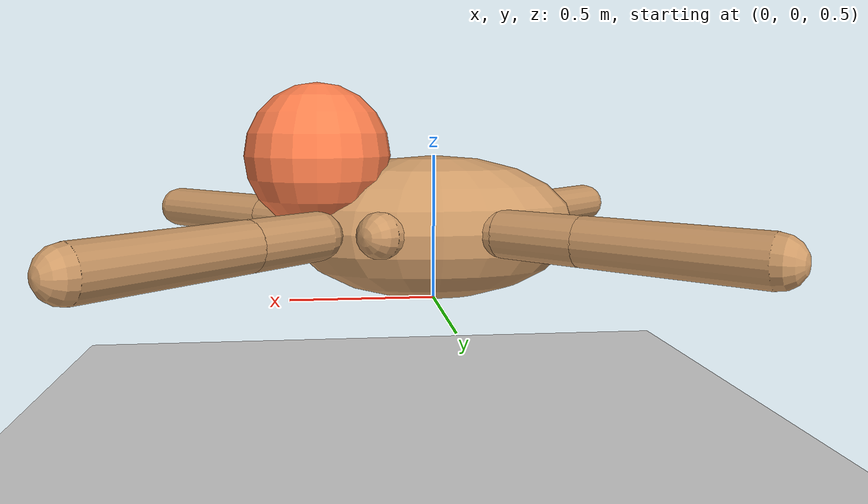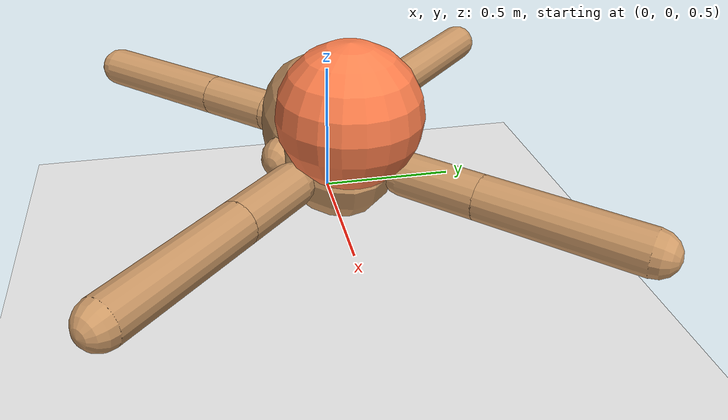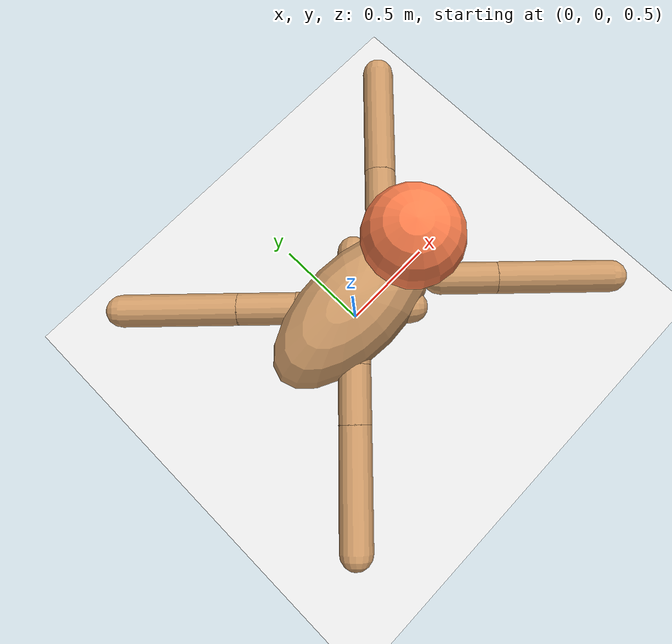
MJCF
<mujoco model="ant">
  <compiler angle="degree" coordinate="local" inertiafromgeom="true" settotalmass="40"/>
  <option integrator="RK4" timestep="0.005"/>
  <custom>
    <numeric data="0.0 0.0 0.55 1.0 0.0 0.0 0.0 0.0 1.0 0.0 -1.0 0.0 -1.0 0.0 1.0" name="init_qpos"/>
  </custom>
  <default>
    <joint armature="1" damping="1" limited="true"/>
    <geom conaffinity="1" contype="1" condim="3" density="5.0" friction="1 0.5 0.5" margin="0.01" rgba="0.8 0.6 0.4 1" material="geom"/>
  </default>
  <visual>
    <quality shadowsize="8000" numslices="36" numquads="16"/>
    <map znear="0.02" shadowclip="3"/>
  </visual>
  <asset>
      <texture type="skybox" builtin="gradient" rgb1="1 1 1" rgb2="1 1 1" width="200" height="200"/>
      <texture builtin="checker" height="200" name="texplane" rgb1=".35 .65 .65" rgb2=".0 .4 0.6" type="2d" width="200"/>
      <material name="MatPlane" reflectance="1" shininess="0.5" specular="0.5" texrepeat="50 50" texture="texplane"/>
      <texture builtin="flat" height="1278" mark="cross" markrgb="1 1 1" name="texgeom" random="0.01" rgb1="0.8 0.6 0.4" rgb2="0.8 0.6 0.4" type="cube" width="127"/>
      <material name="geom" texture="texgeom" texuniform="true"/>
  </asset>
  <worldbody>
    <light directional="true" cutoff="100" exponent="1" diffuse="1 1 1" specular=".1 .1 .1" pos="0 0 1.3" dir="-0 0 -1.3" />
    <geom name='floor' material="MatPlane" pos='0 0 0' size='40 40 40' type='plane' rgba='0.9 0.9 0.9 1' condim='3' group="1"/>
    <body name="torso" pos="0 0 0.75">
      <camera name="track" mode="trackcom" pos="0 -12 8" xyaxes="1 0 0 0 0.6 0.8"/>
      <geom name="torso_geom" pos="0 0 0" size="0.50 0.25 0.25" type="ellipsoid"/>
      <body name="head" pos="0.4 0 0.25">
        <geom name="head_geom" density="0.01" rgba="1.0 0.5 0.3 1" pos="0.0 0.0 0.0" size="0.25" type="sphere"/>
        <site name="head_site" pos="0.0 0.0 0.0" size="0.005" type="sphere"/>
      </body>
      <joint armature="0" damping="0" limited="false" margin="0.01" name="root" pos="0 0 0" type="free"/>
      <body name="front_left_leg" pos="0 0 0">
        <geom fromto="0.0 0.0 0.0 0.2 0.2 0.0" name="aux_1_geom" size="0.08" type="capsule"/>
        <body name="aux_1" pos="0.4 0.2 0">
          <joint axis="0 0 1" name="hip_1" pos="0.0 0.0 0.0" range="-30 30" type="hinge"/>
          <geom fromto="0.0 0.0 0.0 0.2 0.2 0.0" name="front_left_leg_geom" size="0.08" type="capsule"/>
          <site fromto="0.0 0.0 0.0 0.2 0.2 0.0" name="front_left_leg_site" size="0.005" type="capsule"/>
          <body pos="0.2 0.2 0">
            <joint axis="-1 1 0" name="ankle_1" pos="0.0 0.0 0.0" range="30 70" type="hinge"/>
            <geom fromto="0.0 0.0 0.0 0.4 0.4 0.0" name="front_left_ankle_geom" size="0.08" type="capsule"/>
            <site fromto="0.0 0.0 0.0 0.4 0.4 0.0" name="front_left_ankle_site" size="0.005" type="capsule"/>
          </body>
        </body>
      </body>
      <body name="front_right_leg" pos="0 0 0">
        <geom fromto="0.0 0.0 0.0 -0.2 0.2 0.0" name="aux_2_geom" size="0.08" type="capsule"/>
        <body name="aux_2" pos="-0.2 0.2 0">
          <joint axis="0 0 1" name="hip_2" pos="0.0 0.0 0.0" range="-30 30" type="hinge"/>
          <geom fromto="0.0 0.0 0.0 -0.2 0.2 0.0" name="front_right_leg_geom" size="0.08" type="capsule"/>
          <body pos="-0.2 0.2 0">
            <joint axis="1 1 0" name="ankle_2" pos="0.0 0.0 0.0" range="-70 -30" type="hinge"/>
            <geom fromto="0.0 0.0 0.0 -0.4 0.4 0.0" name="front_right_ankle_geom" size="0.08" type="capsule"/>
          </body>
        </body>
      </body>
      <body name="back_leg" pos="0 0 0">
        <geom fromto="0.0 0.0 0.0 -0.2 -0.2 0.0" name="aux_3_geom" size="0.08" type="capsule"/>
        <body name="aux_3" pos="-0.2 -0.2 0">
          <joint axis="0 0 1" name="hip_3" pos="0.0 0.0 0.0" range="-30 30" type="hinge"/>
          <geom fromto="0.0 0.0 0.0 -0.2 -0.2 0.0" name="left_back_leg_geom" size="0.08" type="capsule"/>
          <body pos="-0.2 -0.2 0">
            <joint axis="-1 1 0" name="ankle_3" pos="0.0 0.0 0.0" range="-70 -30" type="hinge"/>
            <geom fromto="0.0 0.0 0.0 -0.4 -0.4 0.0" name="left_back_ankle_geom" size="0.08" type="capsule"/>
          </body>
        </body>
      </body>
      <body name="right_back_leg" pos="0 0 0">
        <geom fromto="0.0 0.0 0.0 0.2 -0.2 0.0" name="aux_4_geom" size="0.08" type="capsule"/>
        <body name="aux_4" pos="0.4 -0.2 0">
          <joint axis="0 0 1" name="hip_4" pos="0.0 0.0 0.0" range="-30 30" type="hinge"/>
          <geom fromto="0.0 0.0 0.0 0.2 -0.2 0.0" name="right_back_leg_geom" size="0.08" type="capsule"/>
          <body pos="0.2 -0.2 0">
            <joint axis="1 1 0" name="ankle_4" pos="0.0 0.0 0.0" range="30 70" type="hinge"/>
            <geom fromto="0.0 0.0 0.0 0.4 -0.4 0.0" name="right_back_ankle_geom" size="0.08" type="capsule"/>
          </body>
        </body>
      </body>
    </body>

  </worldbody>
  <actuator>
    <motor ctrllimited="true" ctrlrange="-1.0 1.0" joint="hip_4" gear="150"/>
    <motor ctrllimited="true" ctrlrange="-1.0 1.0" joint="ankle_4" gear="150"/>
    <motor ctrllimited="true" ctrlrange="-1.0 1.0" joint="hip_1" gear="150"/>
    <motor ctrllimited="true" ctrlrange="-1.0 1.0" joint="ankle_1" gear="150"/>
    <motor ctrllimited="true" ctrlrange="-1.0 1.0" joint="hip_2" gear="150"/>
    <motor ctrllimited="true" ctrlrange="-1.0 1.0" joint="ankle_2" gear="150"/>
    <motor ctrllimited="true" ctrlrange="-1.0 1.0" joint="hip_3" gear="150"/>
    <motor ctrllimited="true" ctrlrange="-1.0 1.0" joint="ankle_3" gear="150"/>
  </actuator>
  <sensor>
    <force name='force_head' site='head_site' />
    <force name='force_front_left_leg' site='front_left_leg_site' />
  </sensor>
</mujoco>
